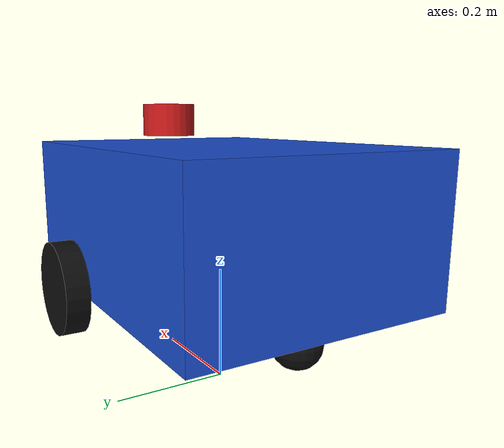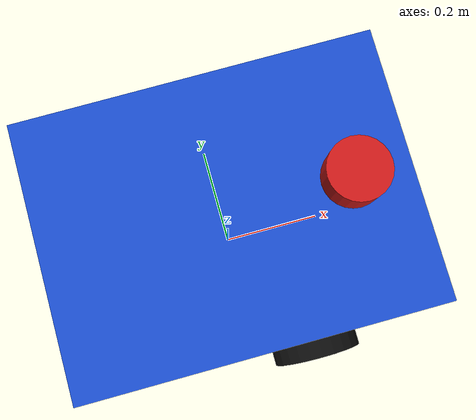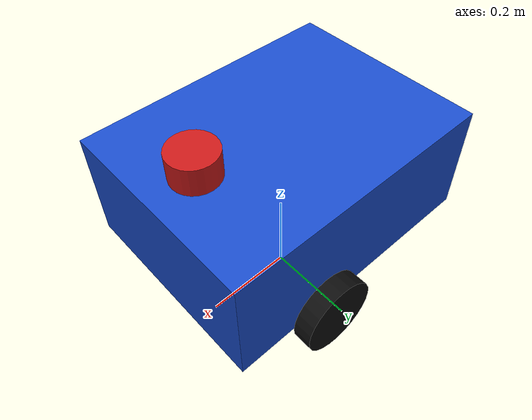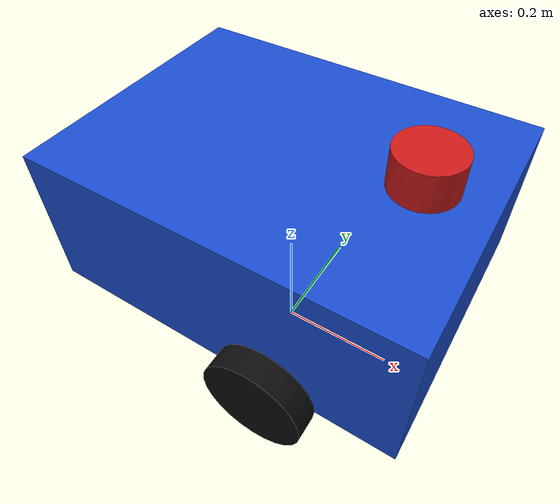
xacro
<?xml version="1.0"?>
<robot xmlns:xacro="http://www.ros.org/wiki/xacro"
       name="warehouse_robot">
  <xacro:property name="body_l" value="0.60"/>
  <xacro:property name="body_w" value="0.45"/>
  <xacro:property name="body_h" value="0.25"/>
  <xacro:property name="wheel_r" value="0.08"/>
  <xacro:property name="wheel_w" value="0.04"/>
  <xacro:property name="wheel_track" value="0.50"/>
  <material name="blue">
    <color rgba="0.1 0.3 0.8 1.0"/>
  </material>
  <material name="black">
    <color rgba="0.05 0.05 0.05 1.0"/>
  </material>
  <material name="red">
    <color rgba="0.8 0.1 0.1 1.0"/>
  </material>
  <!-- 机器人主体 -->
  <link name="base_link">
    <visual>
      <origin xyz="0 0 ${0.17 + body_h / 2.0}"/>
      <geometry>
        <box size="${body_l} ${body_w} ${body_h}"/>
      </geometry>
      <material name="blue"/>
    </visual>
    <collision>
      <origin xyz="0 0 ${0.17 + body_h / 2.0}"/>
      <geometry>
        <box size="${body_l} ${body_w} ${body_h}"/>
      </geometry>
    </collision>
    <inertial>
      <origin xyz="0 0 ${0.17 + body_h / 2.0}"/>
      <mass value="20.0"/>
      <inertia ixx="0.441667" ixy="0" ixz="0"
               iyy="0.704167" iyz="0"
               izz="0.937500"/>
    </inertial>
  </link>
  <!-- 左驱动轮 -->
  <link name="left_wheel_link">
    <visual>
      <origin xyz="0 0 0"/>
      <geometry>
        <cylinder radius="${wheel_r}" length="${wheel_w}"/>
      </geometry>
      <material name="black"/>
    </visual>
    <collision>
      <geometry>
        <cylinder radius="${wheel_r}" length="${wheel_w}"/>
      </geometry>
    </collision>
  <inertial>
  <origin xyz="0 0 0"/>
  <mass value="1.0"/>
  <inertia ixx="0.00173333" ixy="0" ixz="0"
           iyy="0.00173333" iyz="0"
           izz="0.0032"/>
  </inertial>
  </link>
  <gazebo reference="left_wheel_link">
  <material>Gazebo/Black</material>
  <mu1>1.5</mu1>
  <mu2>1.5</mu2>
  </gazebo>
  <joint name="left_wheel_joint"
         type="continuous">
    <parent link="base_link"/>
    <child link="left_wheel_link"/>
    <origin xyz="0.10 ${wheel_track / 2.0} 0.18"
            rpy="-1.5708 0 0"/>
    <axis xyz="0 0 1"/>
  </joint>
  <!-- 右驱动轮 -->
  <link name="right_wheel_link">
    <visual>
      <geometry>
        <cylinder radius="${wheel_r}" length="${wheel_w}"/>
      </geometry>
      <material name="black"/>
    </visual>
    <collision>
      <geometry>
        <cylinder radius="${wheel_r}" length="${wheel_w}"/>
      </geometry>
    </collision>
  <inertial>
  <origin xyz="0 0 0"/>
  <mass value="1.0"/>
  <inertia ixx="0.00173333" ixy="0" ixz="0"
           iyy="0.00173333" iyz="0"
           izz="0.0032"/>
  </inertial>
  </link>
  <gazebo reference="right_wheel_link">
  <material>Gazebo/Black</material>
  <mu1>1.5</mu1>
  <mu2>1.5</mu2>
  </gazebo>
  <joint name="right_wheel_joint"
         type="continuous">
    <parent link="base_link"/>
    <child link="right_wheel_link"/>
    <origin xyz="0.10 -${wheel_track / 2.0} 0.18"
            rpy="-1.5708 0 0"/>
    <axis xyz="0 0 1"/>
  </joint>
  <!-- 支撑轮 -->
  <link name="caster_wheel_link">
    <visual>
      <geometry>
        <sphere radius="0.04"/>
      </geometry>
      <material name="black"/>
    </visual>
    <collision>
      <geometry>
        <sphere radius="0.04"/>
      </geometry>
    </collision>
  <inertial>
  <origin xyz="0 0 0"/>
  <mass value="0.2"/>
  <inertia ixx="0.000128" ixy="0" ixz="0"
           iyy="0.000128" iyz="0"
           izz="0.000128"/>
  </inertial>
  </link>
  <gazebo reference="caster_wheel_link">
  <material>Gazebo/Black</material>
  <mu1>0.001</mu1>
  <mu2>0.001</mu2>
  </gazebo>
  <joint name="caster_wheel_joint"
         type="fixed">
    <parent link="base_link"/>
    <child link="caster_wheel_link"/>
    <origin xyz="-0.22 0 0.14"/>
  </joint>
  <!-- 激光雷达 -->
  <link name="laser_link">
    <visual>
      <geometry>
        <cylinder radius="0.05" length="0.06"/>
      </geometry>
      <material name="red"/>
    </visual>
  </link>
  <joint name="laser_joint"
         type="fixed">
    <parent link="base_link"/>
    <child link="laser_link"/>
    <origin xyz="0.20 0 0.46"/>
  </joint>
  <!-- IMU -->
  <link name="imu_link">
    <visual>
      <geometry>
        <box size="0.06 0.04 0.02"/>
      </geometry>
      <material name="red"/>
    </visual>
    <!-- 不写 inertial 时 Gazebo 按视觉体积+密度 1 推出 4.8e-5 kg，与 20 kg 车身差 40 万倍，
         这个 link 在物理引擎里等于不存在，IMU 传感器于是永远不发数据（发布者有、零帧） -->
    <inertial>
      <origin xyz="0 0 0"/>
      <mass value="0.05"/>
      <inertia ixx="0.0000083" ixy="0" ixz="0"
               iyy="0.0000167" iyz="0"
               izz="0.0000217"/>
    </inertial>
  </link>
  <joint name="imu_joint"
         type="fixed">
    <parent link="base_link"/>
    <child link="imu_link"/>
    <origin xyz="0 0 0.30"/>
  </joint>

  <!-- Gazebo 不读 URDF 的 material，需要单独指定预置材质 -->
  <gazebo reference="base_link">
    <material>Gazebo/Blue</material>
  </gazebo>
  <gazebo reference="laser_link">
    <material>Gazebo/Red</material>
    <sensor name="warehouse_lidar" type="ray">
      <pose>0 0 0 0 0 0</pose>
      <visualize>true</visualize>
      <update_rate>10</update_rate>
      <ray>
        <scan>
          <horizontal>
            <samples>360</samples>
            <resolution>1.0</resolution>
            <min_angle>-3.14159</min_angle>
            <max_angle>3.14159</max_angle>
          </horizontal>
        </scan>
        <range>
          <min>0.12</min>
          <max>8.0</max>
          <resolution>0.015</resolution>
        </range>
        <noise>
          <type>gaussian</type>
          <mean>0.0</mean>
          <stddev>0.01</stddev>
        </noise>
      </ray>
      <plugin name="warehouse_lidar_driver" filename="libgazebo_ros_ray_sensor.so">
        <ros>
          <remapping>~/out:=scan</remapping>
        </ros>
        <output_type>sensor_msgs/LaserScan</output_type>
        <frame_name>laser_link</frame_name>
      </plugin>
    </sensor>
  </gazebo>
  <gazebo reference="imu_link">
    <material>Gazebo/Black</material>
    <sensor name="warehouse_imu" type="imu">
      <!-- SDF 里 always_on 默认 false，而 Gazebo 判断"有没有人订阅"只看它自己的 transport，
           ROS 2 插件的发布者不算数，于是传感器永不激活：发布者建好了却零帧 -->
      <always_on>true</always_on>
      <update_rate>100</update_rate>
      <plugin name="warehouse_imu_driver" filename="libgazebo_ros_imu_sensor.so">
        <ros>
          <remapping>~/out:=imu</remapping>
        </ros>
        <initial_orientation_as_reference>false</initial_orientation_as_reference>
      </plugin>
      <imu>
        <angular_velocity>
          <x>
            <noise type="gaussian">
              <mean>0.0</mean>
              <stddev>0.001</stddev>
            </noise>
          </x>
          <y>
            <noise type="gaussian">
              <mean>0.0</mean>
              <stddev>0.001</stddev>
            </noise>
          </y>
          <z>
            <noise type="gaussian">
              <mean>0.0</mean>
              <stddev>0.001</stddev>
            </noise>
          </z>
        </angular_velocity>
        <linear_acceleration>
          <x>
            <noise type="gaussian">
              <mean>0.0</mean>
              <stddev>0.01</stddev>
            </noise>
          </x>
          <y>
            <noise type="gaussian">
              <mean>0.0</mean>
              <stddev>0.01</stddev>
            </noise>
          </y>
          <z>
            <noise type="gaussian">
              <mean>0.0</mean>
              <stddev>0.01</stddev>
            </noise>
          </z>
        </linear_acceleration>
      </imu>
    </sensor>
  </gazebo>

  <!-- 差速驱动：订阅 cmd_vel，发布 odom 并广播 odom -> base_link -->
  <gazebo>
    <plugin name="warehouse_diff_drive" filename="libgazebo_ros_diff_drive.so">
      <update_rate>30.0</update_rate>
      <left_joint>left_wheel_joint</left_joint>
      <right_joint>right_wheel_joint</right_joint>
      <wheel_separation>${wheel_track}</wheel_separation>
      <wheel_diameter>${2 * wheel_r}</wheel_diameter>
      <max_wheel_torque>30.0</max_wheel_torque>
      <max_wheel_acceleration>2.0</max_wheel_acceleration>
      <command_topic>cmd_vel</command_topic>
      <publish_odom>true</publish_odom>
      <publish_odom_tf>true</publish_odom_tf>
      <publish_wheel_tf>false</publish_wheel_tf>
      <odometry_topic>odom</odometry_topic>
      <odometry_frame>odom</odometry_frame>
      <robot_base_frame>base_link</robot_base_frame>
    </plugin>
  </gazebo>
</robot>
